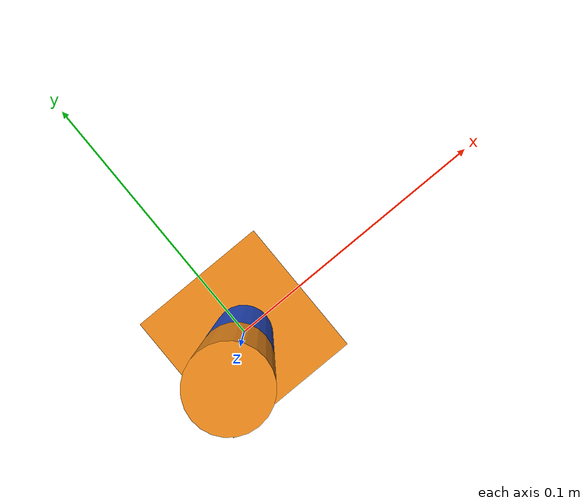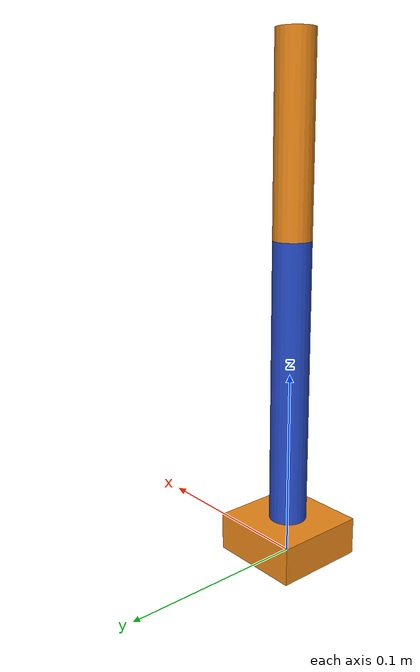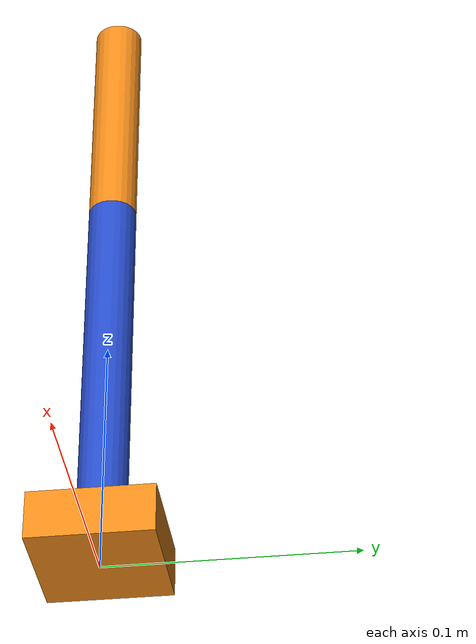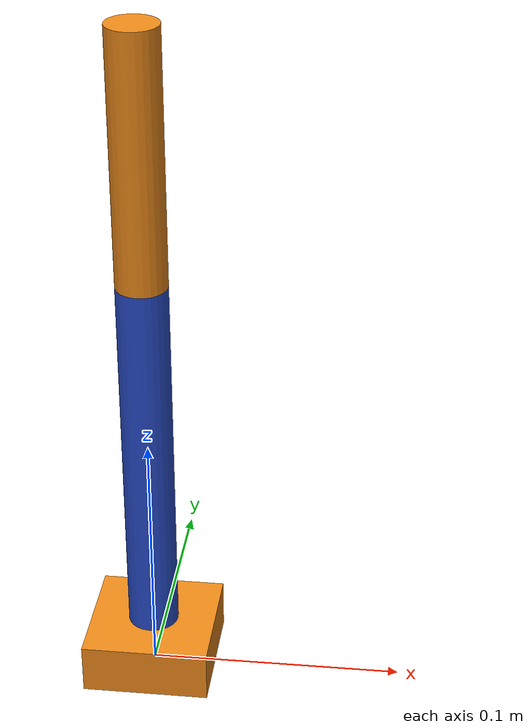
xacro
<?xml version="1.0"?>
<robot xmlns:xacro="http://www.ros.org/wiki/xacro">

    <xacro:property name="arm_base_length" value="0.05" />
    <xacro:property name="arm_base_width" value="0.05" />
    <xacro:property name="arm_base_height" value="0.02" />
    <xacro:property name="forearm_radius" value="0.01" />
    <xacro:property name="forearm_length" value="0.15" />
    <xacro:property name="hand_radius" value="0.01" />
    <xacro:property name="hand_length" value="0.1" />

    <link name="arm_base_link">
        <visual>
            <geometry>
                <box size="${arm_base_length} ${arm_base_width} ${arm_base_height}" />
            </geometry>
            <origin xyz="0 0 ${arm_base_height / 2.0}" rpy="0 0 0" />
            <material name="orange" />
        </visual>
        <collision>
            <geometry>
                <box size="${arm_base_length} ${arm_base_width} ${arm_base_height}" />
            </geometry>
            <origin xyz="0 0 ${arm_base_height / 2.0}" rpy="0 0 0" />
        </collision>
        <xacro:box_inertia m="0.5" l="${2*arm_base_length}" w="${2*arm_base_width}" h="${2*arm_base_height}"
                           xyz="0 0 ${arm_base_height / 2.0}" rpy="0 0 0" />
    </link>

    <link name="forearm_link">
        <visual>
            <geometry>
                <cylinder radius="${forearm_radius}" length="${forearm_length}" />
            </geometry>
            <origin xyz="0 0 ${forearm_length / 2.0}" rpy="0 0 0" />
            <material name="blue" />
        </visual>
        <collision>
            <geometry>
                <cylinder radius="${forearm_radius}" length="${forearm_length}" />
            </geometry>
            <origin xyz="0 0 ${forearm_length / 2.0}" rpy="0 0 0" />
        </collision>
        <xacro:cylinder_inertia m="0.3" r="${2*forearm_radius}" h="${2*forearm_length}"
                                xyz="0 0 ${forearm_length / 2.0}" rpy="0 0 0" />
    </link>

    <link name="hand_link">
        <visual>
            <geometry>
                <cylinder radius="${hand_radius}" length="${hand_length}" />
            </geometry>
            <origin xyz="0 0 ${hand_length / 2.0}" rpy="0 0 0" />
            <material name="orange" />
        </visual>
        <collision>
             <geometry>
                <cylinder radius="${hand_radius}" length="${hand_length}" />
            </geometry>
            <origin xyz="0 0 ${hand_length / 2.0}" rpy="0 0 0" />
        </collision>
        <xacro:cylinder_inertia m="0.3" r="${2*hand_radius}" h="${2*hand_length}"
                                xyz="0 0 ${hand_length / 2.0}" rpy="0 0 0" />
    </link>

    <joint name="arm_base_forearm_joint" type="revolute">
        <parent link="arm_base_link" />
        <child link="forearm_link" />
        <origin xyz="0 0 ${arm_base_height}" rpy="0 0 0" />
        <axis xyz="0 1 0" />
        <limit lower="0" upper="${pi/2}" effort="100" velocity="100" />
        <dynamics friction="0.05" damping="0.1" />
    </joint>

    <joint name="forearm_hand_joint" type="revolute">
        <parent link="forearm_link" />
        <child link="hand_link" />
        <origin xyz="0 0 ${forearm_length}" rpy="0 0 0" />
        <axis xyz="0 1 0" />
        <limit lower="0" upper="${pi/2}" effort="100" velocity="100" />
        <dynamics friction="0.05" damping="0.1" />
    </joint>

</robot>
